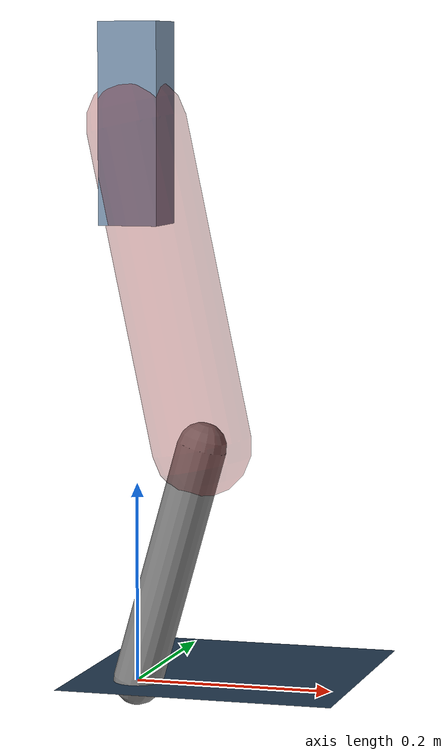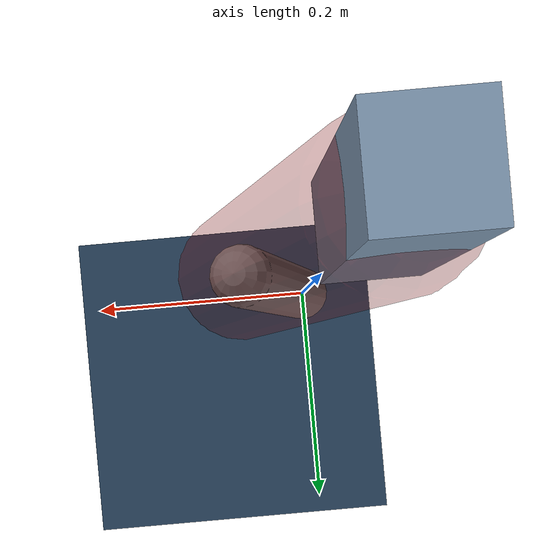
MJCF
<mujoco model="Hopper2D">
	<compiler inertiafromgeom="true" angle="radian" />
	<option timestep="0.001" integrator="implicit" cone="elliptic" solver="Newton" tolerance="1e-10" />

	<default>
		<geom contype="1" conaffinity="1" condim="3" friction="2 0.005 0.0001" solref="0.005 1" />
		<joint limited="true" damping="0.1" />
	</default>

	<asset>
		<texture name="skybox" type="skybox" builtin="gradient" rgb1=".4 .6 .8" rgb2="0 0 0" width="800" height="800" />
		<texture name="grid" type="2d" builtin="checker" rgb1=".1 .2 .3" rgb2=".2 .3 .4" width="300" height="300" mark="edge" markrgb=".2 .3 .4" />
		<material name="ground" texture="grid" texrepeat="1 1" texuniform="true" reflectance="0.1" />
		<material name="leg" rgba="0.5 0.6 0.7 1" />
	</asset>

	<worldbody>

		<geom name="floor" type="plane" size="5 5 0.25" material="ground" />

		<light directional="false" diffuse="0.8 0.8 0.8" specular="0.3 0.3 0.3" pos="0 0 2" dir="0 0 -1" />
		<light mode="targetbodycom" target="base" directional="false" diffuse="0.8 0.8 0.8" specular="0.3 0.3 0.3" pos="0 0 2" dir="0 0 -1" />

		<camera name="fixed" pos="0 -2 1" xyaxes="1 0 0 0 0 1" />
		<camera name="tracking" mode="trackcom" pos="0 -3 1" />

		<body name="root" pos="0 0 0.5598147590948772">
			<joint name="slide_x" type="slide" axis="1 0 0" range="-100 100" />
			<joint name="slide_z" type="slide" axis="0 0 1" range="0 10" />

			<body name="base" pos="0 0 0">
				<geom name="torso" type="box" size="0.03 0.03 0.1" mass="2.692" material="leg" />

				<body name="link1" pos="0 0 0" euler="0 1.3632783746494765 0">
					<joint type="hinge" axis="0 -1 0" pos="0 0 0" name="hinge1" limited="true" range="-3.14 3.14" stiffness="0" damping="0.1" />
					<geom name="thigh" type="capsule" fromto="0 0 0 0.32738543015502924 0 0" size="0.05" rgba="0.5 0 0 0.3" mass="1.0635792044340817" />

					<body name="link2" pos="0.32738543015502924 0 0" euler="0 0.48209385756826273 0">
						<joint type="hinge" axis="0 -1 0" pos="0 0 0" name="hinge2" limited="true" range="-3.14 3.14" stiffness="0" damping="0.1" />
						<geom name="shank" type="capsule" fromto="0 0 0 0.24877222176875963 0 0" size="0.025" mass="0.4415177774150077" />

					</body>
				</body>
			</body>
		</body>
	</worldbody>

	<actuator>
		<motor name="torque1" joint="hinge1" ctrlrange="-16.235578732133018 16.235578732133018" ctrllimited="true" gear="1" />
		<motor name="torque2" joint="hinge2" ctrlrange="-131.67485502455278 131.67485502455278" ctrllimited="true" gear="1" />
	</actuator>
</mujoco>
